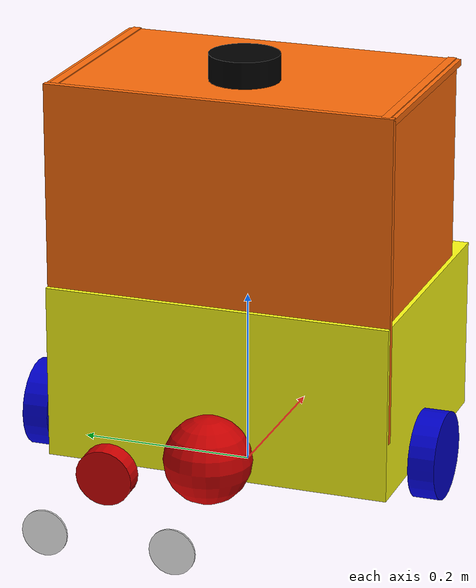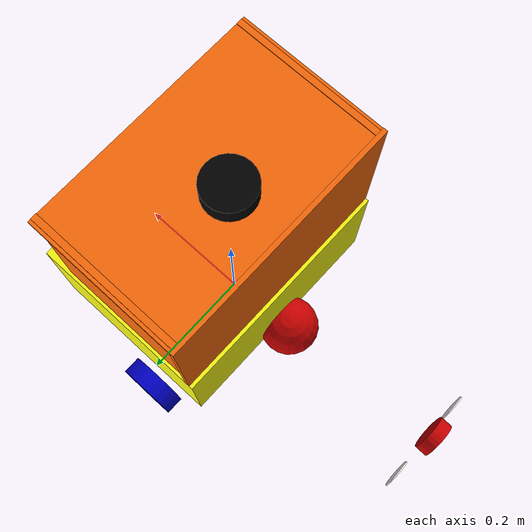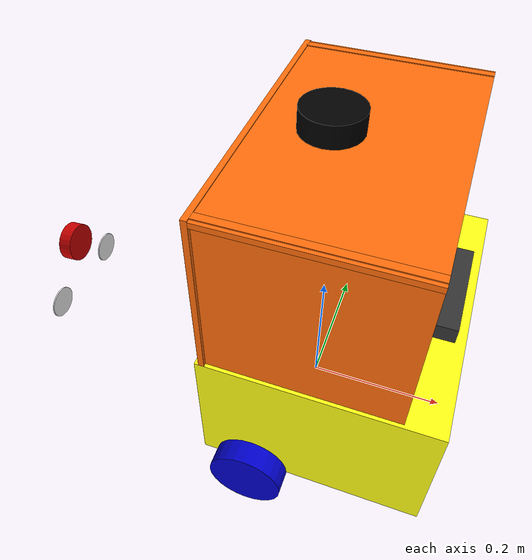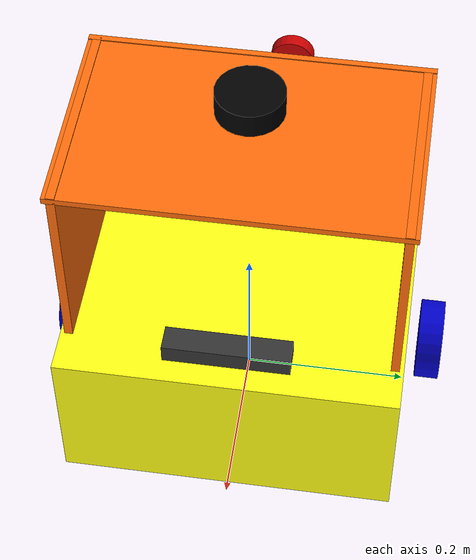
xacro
<?xml version="1.0"?>
<robot xmlns:xacro="http://www.ros.org/wiki/xacro">

<!--matierials.xacro-->
	<material name="black">
		<color rgba="0.0 0.0 0.0 1.0"/>
	</material>

	<material name="blue">
		<color rgba="0.0 0.0 0.8 1.0"/>
	</material>

	<material name="green">
		<color rgba="0.0 0.8 0.0 1.0"/>
	</material>

	<material name="grey">
		<color rgba="0.2 0.2 0.2 1.0"/>
	</material>

	<material name="orange">
		<color rgba="${255/255} ${108/255} ${10/255} 1.0"/>
	</material>

	<material name="brown">
		<color rgba="${222/255} ${207/255} ${195/255} 1.0"/>
	</material>

	<material name="red">
		<color rgba="0.8 0.0 0.0 1.0"/>
	</material>

	<material name="white">
		<color rgba="1.0 1.0 1.0 1.0"/>
	</material>

	<material name="yellow" >
    	<color rgba="1.0 1.0 0.0784313725490196 1.0" />
	</material>

	<material name="stainless">
		<color rgba="${224/255} ${223/255} ${219/255} 1.0"/>
	</material>

	<material name="aluminium">
		<color rgba="${132/255} ${135/255} ${137/255} 1.0"/>
	</material>

<!--define physical properties for robot-->
	<xacro:property name="body_length" value="0.31"/>
	<xacro:property name="body_width" value="0.4"/>
	<xacro:property name="body_height" value="0.2"/>
	<xacro:property name="body_mass" value="12"/>

	<xacro:property name="base_caster_length" value="0.25"/>
	<xacro:property name="base_caster_width" value="0.01"/>
	<xacro:property name="base_caster_height" value="0.37"/>

	<xacro:property name="above_base_caster_length" value="0.25"/>
	<xacro:property name="above_base_caster_width" value="0.4"/>
	<xacro:property name="above_base_caster_height" value="0.0075"/>

	<xacro:property name="back_base_caster_length" value="0.0075"/>
	<xacro:property name="back_base_caster_width" value="0.4"/>
	<xacro:property name="back_base_caster_height" value="0.37"/>

	<xacro:property name="wheel_radius" value="0.05"/>
	<xacro:property name="wheel_width" value="0.03"/>
	<xacro:property name="wheel_mass" value="0.3"/>
	<xacro:property name="wheel_separation" value="0.46"/>
	<xacro:property name="PI" value="3.1415926535897931"/>

	<xacro:macro name="cylinder_inertia" params="m r h">
		<inertia ixx="${m*(3*r*r+h*h)/12}" ixy = "0" ixz = "0"
		         iyy="${m*(3*r*r+h*h)/12}" iyz = "0"
		         izz="${m*r*r/2}"/>
	</xacro:macro>

	<xacro:macro name="box_inertia" params="m l w h">
		<inertia ixx="${m*(h*h+l*l)/12}" ixy = "0" ixz = "0"
		         iyy="${m*(w*w+h*h)/12}" iyz = "0"
		         izz="${m*(w*w+l*l)/12}" />
	</xacro:macro>

<!--base link-->
    <joint name="base_footprint_joint" type="fixed">
       	<origin xyz="0.0 0.0 ${wheel_radius}" rpy="0.0 0.0 0.0"/>
        <parent link="base_footprint"/>
        <child link="base_link"/>
    </joint>

    <link name="base_footprint">
    	<origin xyz="0.0 0.0 0.0"/>
    </link>

	<link name="base_link">
       	<origin xyz="0.0 0.0 0.0"/>
    </link>

<!--chassis link-->
    <joint name="chassis_joint" type="fixed">
        <parent link="base_link"/>
        <child link="chassis"/>
        <origin xyz="-0.16 0.0 0.0"/>
    </joint>

    <link name="chassis">
        <visual>
            <origin xyz="0.2055 0.0 0.07" rpy="0.0 0.0 0.0"/>
            <geometry>
                 <box size="${body_length} ${body_width} ${body_height}"/>
            </geometry>
            <material name="yellow"/>
        </visual>

        <collision>
            <origin xyz="0.2055 0.0 0.07" rpy="0.0 0.0 0.0"/>
            <geometry>
                 <box size="${body_length} ${body_width} ${body_height}"/>
            </geometry>
        </collision>

        <inertial>
            <origin xyz="0.2055 0.0 0.07" rpy="0.0 0.0 0.0"/>
            <mass value="${body_mass}"/>
            <xacro:box_inertia m="${body_mass}" l="${body_length}" w="${body_width}" h="${body_height}"/>
        </inertial>
    </link>

<!--right wheel-->
    <joint name="right_wheel_joint" type="continuous">
        <parent link="base_link"/>
        <child link="right_wheel"/>
        <origin xyz="-0.03 -0.23 0.0" rpy="${PI/2} 0 0"/>
        <axis xyz="0 0 -1"/>
    </joint>

    <link name="right_wheel">
        <visual>
           	<geometry>
             	<cylinder radius="${wheel_radius}" length="${wheel_width}"/>
           	</geometry>
           		<material name="blue"/>
        </visual>

        <collision>
           	<geometry>
             	<cylinder radius="${wheel_radius}" length="${wheel_width}"/>
           	</geometry>
        </collision>

       	<inertial>
            <mass value="${wheel_mass}"/>
            <xacro:cylinder_inertia m="${wheel_mass}" r="${wheel_radius}" h="${wheel_width}"/>
        	</inertial>
    </link>

<!--left wheel-->
	<joint name="left_wheel_joint" type="continuous">
       	<parent link="base_link"/>
        <child link="left_wheel"/>
        <origin xyz="-0.03 0.23 0.0" rpy="${-PI/2} 0.0 0.0"/>
        <axis xyz="0 0 1"/>
    </joint>

	<link name="left_wheel">
        <visual>
           	<geometry>
             	<cylinder radius="${wheel_radius}" length="${wheel_width}"/>
           	</geometry>
           	<material name="blue"/>
        </visual>

        <collision>
           	<geometry>
             	<cylinder radius="${wheel_radius}" length="${wheel_width}"/>
           	</geometry>
        </collision>

        <inertial>
            <mass value="${wheel_mass}"/>
            <xacro:cylinder_inertia m="${wheel_mass}" r="${wheel_radius}" h="${wheel_width}"/>
        </inertial>
	</link>

<!--base caster-->
	<!--above-->
	<joint name="above_base_caster_joint" type="fixed">
         	<parent link="base_link"/>
         	<child link="above_base_caster"/>
         	<origin xyz="0.025 0.0 0.40" rpy="0 0 0"/>
    </joint>

	<link name = "above_base_caster" >
		<visual>
			<geometry>
				<box size="${above_base_caster_length} ${above_base_caster_width} ${above_base_caster_height}"/>
			</geometry>
			<material name = "orange" />
		</visual>

		<collision>
			<geometry>
				<box size="${above_base_caster_length} ${above_base_caster_width} ${above_base_caster_height}"/>
			</geometry>
		</collision>

		<inertial>
            <mass value="0.2" />
            <inertia ixx="0.1" ixy="0.0" ixz="0.0"
                iyy="0.1" iyz="0.0"
                izz="0.1" />
        	</inertial>
	</link>

	<!--right-->
	<joint name="right_base_caster_joint" type="fixed">
        <parent link="base_link"/>
        <child link="right_base_caster"/>
        <origin xyz="0.025 0.19 0.22" rpy="0 0 0"/>
    </joint>

	<link name = "right_base_caster" >
		<visual>
			<geometry>
				<box size="${base_caster_length} ${base_caster_width} ${base_caster_height}"/>
			</geometry>
			<material name = "orange" />
		</visual>
		<collision>
			<geometry>
				<box size="${base_caster_length} ${base_caster_width} ${base_caster_height}"/>
			</geometry>
		</collision>
		<inertial>
        	<mass value="0.2" />
            <inertia ixx="0.1" ixy="0.0" ixz="0.0"
                iyy="0.1" iyz="0.0"
                izz="0.1" />
        	</inertial>
	</link>

	<!--left-->
	<joint name="left_base_caster_joint" type="fixed">
        <parent link="base_link"/>
        <child link="left_base_caster"/>
        <origin xyz="0.025 -0.19 0.22" rpy="0 0 0"/>
    </joint>

	<link name = "left_base_caster" >
		<visual>
			<geometry>
				<box size="${base_caster_length} ${base_caster_width} ${base_caster_height}"/>
			</geometry>
			<material name = "orange" />
		</visual>

		<collision>
			<geometry>
				<box size="${base_caster_length} ${base_caster_width} ${base_caster_height}"/>
			</geometry>
		</collision>

		<inertial>
            <mass value="0.2" />
            <inertia ixx="0.1" ixy="0.0" ixz="0.0"
                iyy="0.1" iyz="0.0"
                izz="0.1" />
        </inertial>
	</link>

	<!--back-->
	<joint name="back_base_caster_joint" type="fixed">
        <parent link="base_link"/>
        <child link="back_base_caster"/>
        <origin xyz="-0.1 0 0.22" rpy="0 0 0"/>
    </joint>

	<link name = "back_base_caster" >
		<visual>
			<geometry>
				<box size="${back_base_caster_length} ${back_base_caster_width} ${back_base_caster_height}"/>
			</geometry>
			<material name = "orange" />
		</visual>

		<collision>
			<geometry>
				<box size="${base_caster_length} ${base_caster_width} ${base_caster_height}"/>
			</geometry>
		</collision>

		<inertial>
            <mass value="0.5" />
            <inertia ixx="0.1" ixy="0.0" ixz="0.0"
            	iyy="0.1" iyz="0.0"
                izz="0.1" />
        	</inertial>
	</link>

<!--caster wheel-->
	<joint name = "caster_wheel_joint" type = "fixed" >
		<parent link = "base_link" />
		<child link = "caster_wheel" />
		<origin xyz = "-0.13 0 0.0" />
	</joint>

	<link name = "caster_wheel" >
		<visual>
			<geometry>
				<sphere radius = "0.05" />
			</geometry>
			<material name = "red" />
		</visual>

		<collision>
			<geometry>
				<sphere radius = "0.05" />
			</geometry>
		</collision>

		<inertial>
            <mass value="0.1" />
            <inertia ixx="0.1" ixy="0.0" ixz="0.0"
                iyy="0.1" iyz="0.0"
                izz="0.1" />
        </inertial>
	</link>

<!--lidar-->
    <joint name="joint_scan" type="fixed">
        <origin xyz="0 0.0 ${body_height +0.25+ 0.009}" rpy="0.0 0.0 3.14159"/>
        <parent link="base_link"/>
        <child link="laser"/>
    </joint>

    <link name="laser">
        <visual>
            <origin xyz="0.01 0.0 -0.04" rpy="0.0 0.0 0.0"/>
            <geometry>
                <cylinder radius="0.04" length="0.03"/>
            </geometry>
            <material name="black"/>
        </visual>

        <collision>
            <origin xyz="0.01 0.0 -0.04" rpy="0.0 0.0 0.0"/>
            <geometry>
                <cylinder radius="0.04" length="0.03"/>
            </geometry>
        </collision>

        <inertial>
            <origin xyz="0.01 0.0 -0.04" rpy="0.0 0.0 0.0"/>
            <mass value="0.114"/>
            <inertia ixx="0.01" ixy="0.0" ixz="0.0" iyy="0.01" iyz="0.0" izz="0.01"/>
        </inertial>
    </link>

<!--face robot-->
    <joint name="face_joint" type="fixed">
        <parent link="chassis"/>
        <child link="face_link"/>
        <origin xyz="-${body_length} 0 ${body_height/2}" rpy="0 0 0"/>
    </joint>

    <link name="face_link">
        <visual>
            <origin xyz="0.05 0.07 -0.075" rpy="0 ${PI/2} 0"/>
            <geometry>
                <cylinder radius="0.025" length="0.002"/>
            </geometry>
            <material name="white"/>
        </visual>

        <visual>
            <origin xyz="0.05 -0.07 -0.075" rpy="0 ${PI/2} 0"/>
            <geometry>
                <cylinder radius="0.025" length="0.002"/>
            </geometry>
            <material name="white"/>
        </visual>

        <visual>
            <origin xyz="0.05 0.0 0.0" rpy="0 ${1.5} 0"/>
            <geometry>
                <cylinder radius="0.03" length="0.02"/>
            </geometry>
            <material name="red"/>
        </visual>
    </link>

	<!-- Thân ZED2 (body) -->
	<link name="zed2_link">
		<visual>
			<origin xyz="0 0 0" rpy="0 0 0"/>
			<geometry>
				<!-- 146.5 x 30 x 23 mm -->
				<box size="0.03 0.1465 0.023"/>
			</geometry>
			<material name="grey"/>
		</visual>
		<collision>
			<origin xyz="0 0 0" rpy="0 0 0"/>
			<geometry>
				<box size="0.03 0.1465 0.023"/>
			</geometry>
		</collision>
		<inertial>
			<mass value="0.5"/>
			<origin xyz="0 0 0" rpy="0 0 0"/>
			<inertia ixx="0.01" iyy="0.01" izz="0.01" ixy="0" ixz="0" iyz="0"/>
		</inertial>
	</link>

	<joint name="zed2_joint" type="fixed">
		<parent link="base_link"/>
		<child link="zed2_link"/>
		<!-- đặt phía trước robot -->
		<origin xyz="0.17 0.0 0.2"/>
	</joint>

	<!-- Left Camera (U26) -->
	<link name="zed2_left_camera_frame"/>
	<joint name="zed2_left_camera_joint" type="fixed">
		<parent link="zed2_link"/>
		<child link="zed2_left_camera_frame"/>
		<!-- 9.3 mm từ mép trái: -0.07325 m so với tâm -->
		<origin xyz="0 -0.07325 0"/>
	</joint>

	<!-- Right Camera (U36) -->
	<link name="zed2_right_camera_frame"/>
	<joint name="zed2_right_camera_joint" type="fixed">
		<parent link="zed2_link"/>
		<child link="zed2_right_camera_frame"/>
		<!-- 129.3 mm từ mép trái: +0.07325 m so với tâm -->
		<origin xyz="0 0.07325 0"/>
	</joint>
	<!--  End ZED2 -->

	<!-- Imu -->
    <link name="imu_link"/>

    <joint name="imu_joint" type="fixed">
        <parent link="zed2_link"/>
        <child link="imu_link"/>
        <origin xyz="0 0.05 -0.0115" rpy="0 0 0"/>
    </joint>
    <!-- End IMU -->

</robot>
